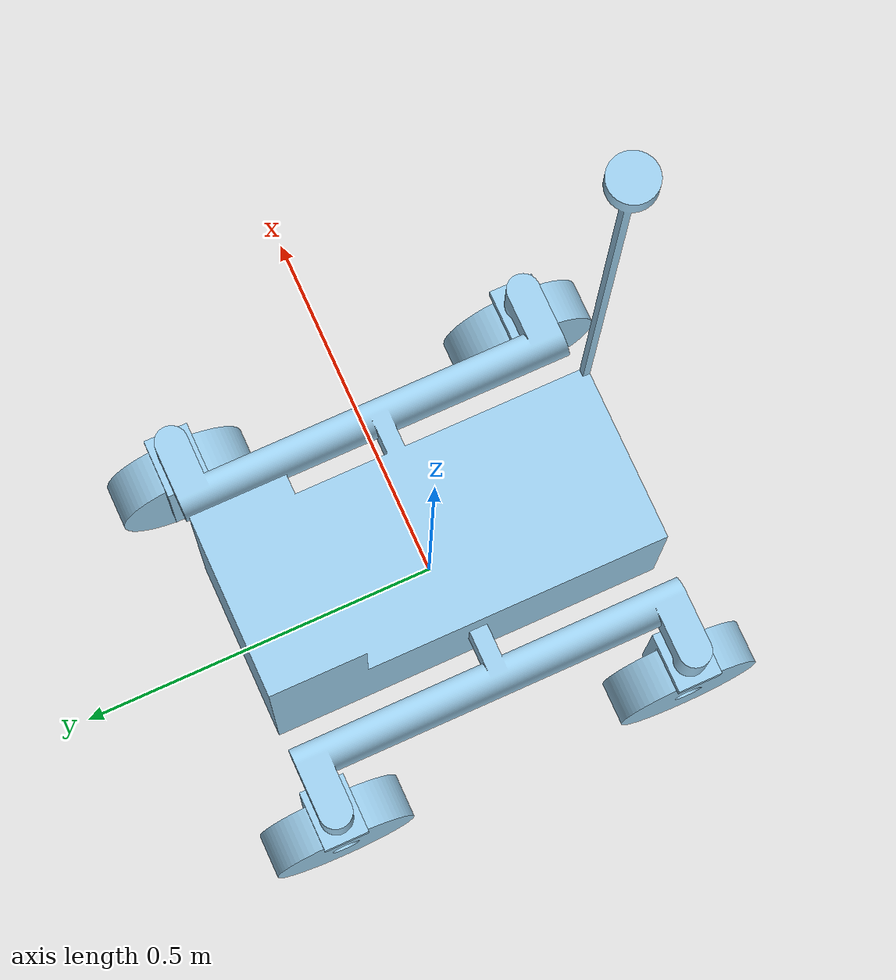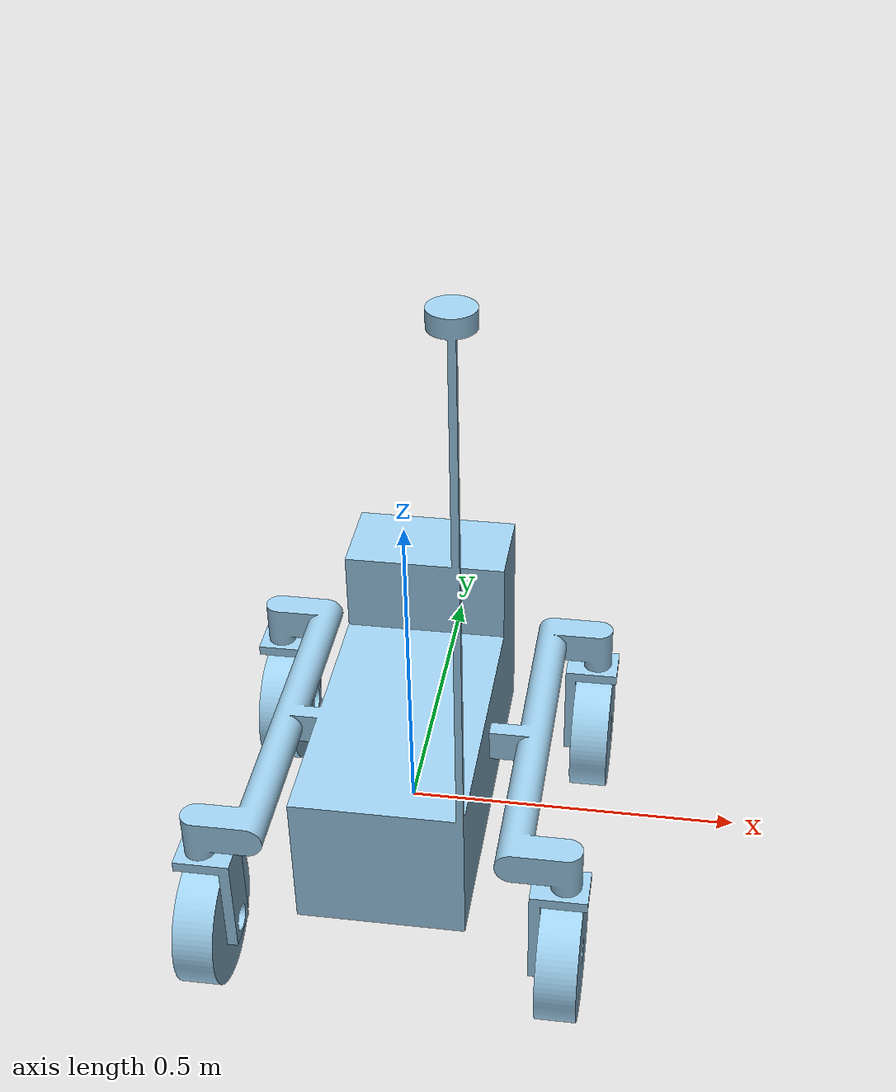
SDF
<sdf version="1.6">
<model name="lunabot">
<link name="body">
<frame name="body_frame"><pose>0 0 0 0 -0 0</pose></frame>
<visual name="body_0_body_visual">
<pose>0 0 0 0 -0 0</pose>
<geometry>
<mesh><uri>file://body.stl</uri></mesh>
</geometry>
<material><ambient>0.61568627450980395466 0.81176470588235294379 0.92941176470588238168 1</ambient><diffuse>0.61568627450980395466 0.81176470588235294379 0.92941176470588238168 1</diffuse><specular>0.1 0.1 0.1 1</specular><emissive>0 0 0 0</emissive></material>
</visual>
<collision name="body_0_body_visual">
<pose>0 0 0 0 -0 0</pose>
<geometry>
<mesh><uri>file://body.stl</uri></mesh>
</geometry>
</collision>
<inertial>
<pose frame="body_frame">0.00047255856824676841735 0.0223648596978729651 0.13076886029956547031 0 0 0</pose>
<mass>25.000000000000007105</mass>
<inertia><ixx>0.90389242187733576106</ixx><ixy>0.0034717089339218617193</ixy><ixz>-0.0076346994671778805816</ixz><iyy>0.40577362837262359596</iyy><iyz>-0.068059613649222985843</iyz><izz>0.9121615213756760765</izz></inertia>
</inertial>
</link>

<link name="wheelpod">
<frame name="wheelpod_frame"><pose>0 0 0 0 -0 0</pose></frame>
<visual name="wheelpod_0_wheelpod_visual">
<pose>-0.26550000000000006928 0.25391250000000009646 0.089399999999999979483 0 -0 0</pose>
<geometry>
<mesh><uri>file://wheelpod.stl</uri></mesh>
</geometry>
<material><ambient>0.61568627450980395466 0.81176470588235294379 0.92941176470588238168 1</ambient><diffuse>0.61568627450980395466 0.81176470588235294379 0.92941176470588238168 1</diffuse><specular>0.1 0.1 0.1 1</specular><emissive>0 0 0 0</emissive></material>
</visual>
<collision name="wheelpod_0_wheelpod_visual">
<pose>-0.26550000000000006928 0.25391250000000009646 0.089399999999999979483 0 -0 0</pose>
<geometry>
<mesh><uri>file://wheelpod.stl</uri></mesh>
</geometry>
</collision>
<inertial>
<pose frame="wheelpod_frame">-0.23545175117490640959 0.25391250000000009646 0.034819937273665335642 0 0 0</pose>
<mass>0.5</mass>
<inertia><ixx>0.0013087489021583560353</ixx><ixy>0</ixy><ixz>0.00026671164402675704222</ixz><iyy>0.0013673630909145266868</iyy><iyz>0</iyz><izz>0.00042583920876048439019</izz></inertia>
</inertial>
</link>

<link name="wheel">
<frame name="wheel_frame"><pose>0 0 0 0 -0 0</pose></frame>
<visual name="wheel_0_wheel_visual">
<pose>-0.2920000000000000373 0.25391250000000009646 -0.043950000000000016831 0 -0 0</pose>
<geometry>
<mesh><uri>file://wheel.stl</uri></mesh>
</geometry>
<material><ambient>0.61568627450980395466 0.81176470588235294379 0.92941176470588238168 1</ambient><diffuse>0.61568627450980395466 0.81176470588235294379 0.92941176470588238168 1</diffuse><specular>0.1 0.1 0.1 1</specular><emissive>0 0 0 0</emissive></material>
</visual>
<collision name="wheel_0_wheel_visual">
<pose>-0.2920000000000000373 0.25391250000000009646 -0.043950000000000016831 0 -0 0</pose>
<geometry>
<mesh><uri>file://wheel.stl</uri></mesh>
</geometry>
</collision>
<inertial>
<pose frame="wheel_frame">-0.26200000000000001066 0.25391250000000009646 -0.043950000000000009892 0 0 0</pose>
<mass>1</mass>
<inertia><ixx>0.005200000000000001496</ixx><ixy>0</ixy><ixz>0</ixz><iyy>0.0029000000000000002338</iyy><iyz>0</iyz><izz>0.0028999999999999993665</izz></inertia>
</inertial>
</link>

<joint name="drive_br" type="revolute">
<pose>-0.23200000000000003952 0.25391250000000009646 -0.043950000000000016831 1.570796326794896558 -0 1.570796326794896558</pose>
<parent>wheelpod</parent>
<child>wheel</child>
<axis>
<xyz>0 0 1</xyz>
<limit><effort>1</effort><velocity>20</velocity></limit>
</axis>
</joint>

<joint name="steer_br" type="revolute">
<pose>-0.26550000000000006928 0.25391250000000009646 0.089399999999999979483 0 -0 0</pose>
<parent>body</parent>
<child>wheelpod</child>
<axis>
<xyz>0 0 1</xyz>
<limit><effort>1</effort><velocity>20</velocity><lower>-1.6580627893946131568</lower><upper>1.6580627893946131568</upper></limit>
</axis>
</joint>

<link name="wheelpod_2">
<frame name="wheelpod_2_frame"><pose>0 0 0 0 -0 0</pose></frame>
<visual name="wheelpod_2_0_wheelpod_visual">
<pose>-0.26550000000000006928 -0.25391249999999998543 0.089399999999999979483 0 -0 0</pose>
<geometry>
<mesh><uri>file://wheelpod.stl</uri></mesh>
</geometry>
<material><ambient>0.61568627450980395466 0.81176470588235294379 0.92941176470588238168 1</ambient><diffuse>0.61568627450980395466 0.81176470588235294379 0.92941176470588238168 1</diffuse><specular>0.1 0.1 0.1 1</specular><emissive>0 0 0 0</emissive></material>
</visual>
<collision name="wheelpod_2_0_wheelpod_visual">
<pose>-0.26550000000000006928 -0.25391249999999998543 0.089399999999999979483 0 -0 0</pose>
<geometry>
<mesh><uri>file://wheelpod.stl</uri></mesh>
</geometry>
</collision>
<inertial>
<pose frame="wheelpod_2_frame">-0.23545175117490640959 -0.25391249999999998543 0.034819937273665335642 0 0 0</pose>
<mass>0.5</mass>
<inertia><ixx>0.0013087489021583560353</ixx><ixy>0</ixy><ixz>0.00026671164402675704222</ixz><iyy>0.0013673630909145266868</iyy><iyz>0</iyz><izz>0.00042583920876048439019</izz></inertia>
</inertial>
</link>

<link name="wheel_2">
<frame name="wheel_2_frame"><pose>0 0 0 0 -0 0</pose></frame>
<visual name="wheel_2_0_wheel_visual">
<pose>-0.2920000000000000373 -0.25391249999999998543 -0.043950000000000016831 0 -0 0</pose>
<geometry>
<mesh><uri>file://wheel.stl</uri></mesh>
</geometry>
<material><ambient>0.61568627450980395466 0.81176470588235294379 0.92941176470588238168 1</ambient><diffuse>0.61568627450980395466 0.81176470588235294379 0.92941176470588238168 1</diffuse><specular>0.1 0.1 0.1 1</specular><emissive>0 0 0 0</emissive></material>
</visual>
<collision name="wheel_2_0_wheel_visual">
<pose>-0.2920000000000000373 -0.25391249999999998543 -0.043950000000000016831 0 -0 0</pose>
<geometry>
<mesh><uri>file://wheel.stl</uri></mesh>
</geometry>
</collision>
<inertial>
<pose frame="wheel_2_frame">-0.26200000000000001066 -0.25391249999999998543 -0.043950000000000009892 0 0 0</pose>
<mass>1</mass>
<inertia><ixx>0.005200000000000001496</ixx><ixy>0</ixy><ixz>0</ixz><iyy>0.0029000000000000002338</iyy><iyz>0</iyz><izz>0.0028999999999999993665</izz></inertia>
</inertial>
</link>

<joint name="drive_fr" type="revolute">
<pose>-0.23200000000000003952 -0.25391249999999998543 -0.043950000000000016831 1.570796326794896558 -0 1.570796326794896558</pose>
<parent>wheelpod_2</parent>
<child>wheel_2</child>
<axis>
<xyz>0 0 1</xyz>
<limit><effort>1</effort><velocity>20</velocity></limit>
</axis>
</joint>

<joint name="steer_fr" type="revolute">
<pose>-0.26550000000000006928 -0.25391249999999998543 0.089399999999999979483 0 -0 0</pose>
<parent>body</parent>
<child>wheelpod_2</child>
<axis>
<xyz>0 0 1</xyz>
<limit><effort>1</effort><velocity>20</velocity><lower>-1.6580627893946131568</lower><upper>1.6580627893946131568</upper></limit>
</axis>
</joint>

<link name="wheelpod_3">
<frame name="wheelpod_3_frame"><pose>0 0 0 0 -0 0</pose></frame>
<visual name="wheelpod_3_0_wheelpod_visual">
<pose>0.26549999999999995826 -0.25391249999999998543 0.089399999999999979483 0 -0 3.141592653589793116</pose>
<geometry>
<mesh><uri>file://wheelpod.stl</uri></mesh>
</geometry>
<material><ambient>0.61568627450980395466 0.81176470588235294379 0.92941176470588238168 1</ambient><diffuse>0.61568627450980395466 0.81176470588235294379 0.92941176470588238168 1</diffuse><specular>0.1 0.1 0.1 1</specular><emissive>0 0 0 0</emissive></material>
</visual>
<collision name="wheelpod_3_0_wheelpod_visual">
<pose>0.26549999999999995826 -0.25391249999999998543 0.089399999999999979483 0 -0 3.141592653589793116</pose>
<geometry>
<mesh><uri>file://wheelpod.stl</uri></mesh>
</geometry>
</collision>
<inertial>
<pose frame="wheelpod_3_frame">0.23545175117490629857 -0.25391249999999998543 0.034819937273665335642 0 0 0</pose>
<mass>0.5</mass>
<inertia><ixx>0.0013087489021583560353</ixx><ixy>0</ixy><ixz>-0.00026671164402675704222</ixz><iyy>0.0013673630909145266868</iyy><iyz>0</iyz><izz>0.00042583920876048439019</izz></inertia>
</inertial>
</link>

<link name="wheel_3">
<frame name="wheel_3_frame"><pose>0 0 0 0 -0 0</pose></frame>
<visual name="wheel_3_0_wheel_visual">
<pose>0.23199999999999995626 -0.25391249999999998543 -0.043950000000000016831 0 -0 0</pose>
<geometry>
<mesh><uri>file://wheel.stl</uri></mesh>
</geometry>
<material><ambient>0.61568627450980395466 0.81176470588235294379 0.92941176470588238168 1</ambient><diffuse>0.61568627450980395466 0.81176470588235294379 0.92941176470588238168 1</diffuse><specular>0.1 0.1 0.1 1</specular><emissive>0 0 0 0</emissive></material>
</visual>
<collision name="wheel_3_0_wheel_visual">
<pose>0.23199999999999995626 -0.25391249999999998543 -0.043950000000000016831 0 -0 0</pose>
<geometry>
<mesh><uri>file://wheel.stl</uri></mesh>
</geometry>
</collision>
<inertial>
<pose frame="wheel_3_frame">0.26199999999999995515 -0.25391249999999998543 -0.043950000000000009892 0 0 0</pose>
<mass>1</mass>
<inertia><ixx>0.005200000000000001496</ixx><ixy>0</ixy><ixz>0</ixz><iyy>0.0029000000000000002338</iyy><iyz>0</iyz><izz>0.0028999999999999993665</izz></inertia>
</inertial>
</link>

<joint name="drive_fl" type="revolute">
<pose>0.23199999999999995626 -0.25391249999999998543 -0.043950000000000016831 -1.570796326794896558 -0 1.570796326794896558</pose>
<parent>wheelpod_3</parent>
<child>wheel_3</child>
<axis>
<xyz>0 0 1</xyz>
<limit><effort>1</effort><velocity>20</velocity></limit>
</axis>
</joint>

<joint name="steer_fl" type="revolute">
<pose>0.26549999999999995826 -0.25391249999999998543 0.089399999999999979483 0 -0 3.141592653589793116</pose>
<parent>body</parent>
<child>wheelpod_3</child>
<axis>
<xyz>0 0 1</xyz>
<limit><effort>1</effort><velocity>20</velocity><lower>-1.6580627893946131568</lower><upper>1.6580627893946131568</upper></limit>
</axis>
</joint>

<link name="wheelpod_4">
<frame name="wheelpod_4_frame"><pose>0 0 0 0 -0 0</pose></frame>
<visual name="wheelpod_4_0_wheelpod_visual">
<pose>0.26549999999999995826 0.25391250000000009646 0.089399999999999979483 0 -0 3.141592653589793116</pose>
<geometry>
<mesh><uri>file://wheelpod.stl</uri></mesh>
</geometry>
<material><ambient>0.61568627450980395466 0.81176470588235294379 0.92941176470588238168 1</ambient><diffuse>0.61568627450980395466 0.81176470588235294379 0.92941176470588238168 1</diffuse><specular>0.1 0.1 0.1 1</specular><emissive>0 0 0 0</emissive></material>
</visual>
<collision name="wheelpod_4_0_wheelpod_visual">
<pose>0.26549999999999995826 0.25391250000000009646 0.089399999999999979483 0 -0 3.141592653589793116</pose>
<geometry>
<mesh><uri>file://wheelpod.stl</uri></mesh>
</geometry>
</collision>
<inertial>
<pose frame="wheelpod_4_frame">0.23545175117490629857 0.25391250000000009646 0.034819937273665335642 0 0 0</pose>
<mass>0.5</mass>
<inertia><ixx>0.0013087489021583560353</ixx><ixy>0</ixy><ixz>-0.00026671164402675704222</ixz><iyy>0.0013673630909145266868</iyy><iyz>0</iyz><izz>0.00042583920876048439019</izz></inertia>
</inertial>
</link>

<link name="wheel_4">
<frame name="wheel_4_frame"><pose>0 0 0 0 -0 0</pose></frame>
<visual name="wheel_4_0_wheel_visual">
<pose>0.23199999999999995626 0.25391250000000009646 -0.043950000000000016831 0 -0 0</pose>
<geometry>
<mesh><uri>file://wheel.stl</uri></mesh>
</geometry>
<material><ambient>0.61568627450980395466 0.81176470588235294379 0.92941176470588238168 1</ambient><diffuse>0.61568627450980395466 0.81176470588235294379 0.92941176470588238168 1</diffuse><specular>0.1 0.1 0.1 1</specular><emissive>0 0 0 0</emissive></material>
</visual>
<collision name="wheel_4_0_wheel_visual">
<pose>0.23199999999999995626 0.25391250000000009646 -0.043950000000000016831 0 -0 0</pose>
<geometry>
<mesh><uri>file://wheel.stl</uri></mesh>
</geometry>
</collision>
<inertial>
<pose frame="wheel_4_frame">0.26199999999999995515 0.25391250000000009646 -0.043950000000000009892 0 0 0</pose>
<mass>1</mass>
<inertia><ixx>0.005200000000000001496</ixx><ixy>0</ixy><ixz>0</ixz><iyy>0.0029000000000000002338</iyy><iyz>0</iyz><izz>0.0028999999999999993665</izz></inertia>
</inertial>
</link>

<joint name="drive_bl" type="revolute">
<pose>0.23199999999999995626 0.25391250000000009646 -0.043950000000000016831 -1.570796326794896558 -0 1.570796326794896558</pose>
<parent>wheelpod_4</parent>
<child>wheel_4</child>
<axis>
<xyz>0 0 1</xyz>
<limit><effort>1</effort><velocity>20</velocity></limit>
</axis>
</joint>

<joint name="steer_bl" type="revolute">
<pose>0.26549999999999995826 0.25391250000000009646 0.089399999999999979483 0 -0 3.141592653589793116</pose>
<parent>body</parent>
<child>wheelpod_4</child>
<axis>
<xyz>0 0 1</xyz>
<limit><effort>1</effort><velocity>20</velocity><lower>-1.6580627893946131568</lower><upper>1.6580627893946131568</upper></limit>
</axis>
</joint>

</model>
</sdf>
